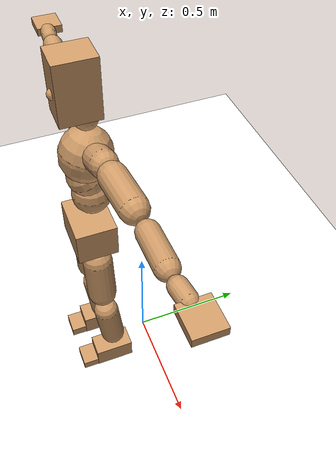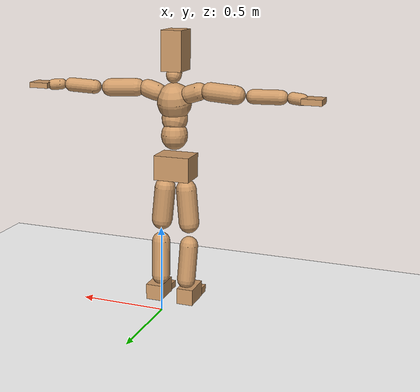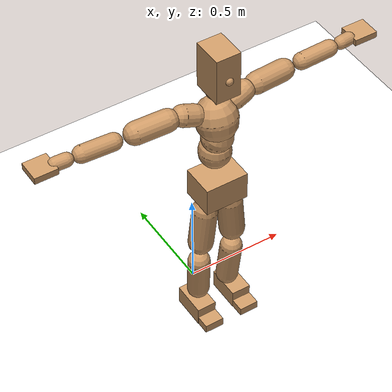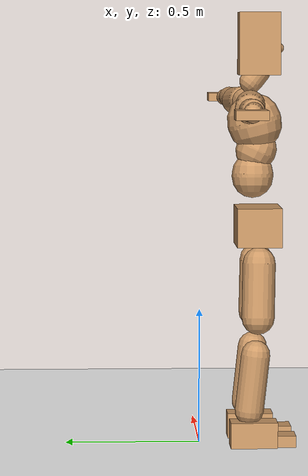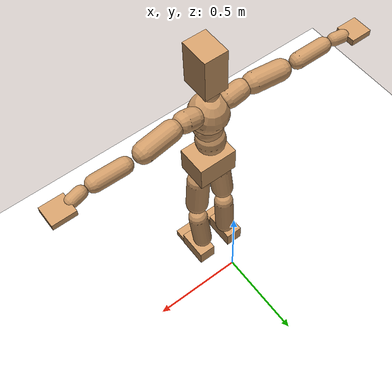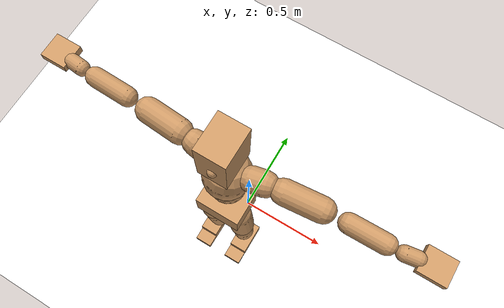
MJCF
<mujoco model="humanoid">
  <option integrator="implicitfast" />

  <visual>
    <global offwidth="1280" offheight="960" />
    <headlight active="1" ambient="0.34 0.34 0.34" diffuse="0.5 0.5 0.5" />
  </visual>

  <default>
    <joint damping="2" stiffness="2" armature="0.01" limited="true" solimplimit="0 .99 .01" />
    <geom condim="1" friction="0.7 0.005 0.0001" solimp=".99 .99 .003" solref="0.015 1" margin="0.001" rgba="0.8 0.6 .4 1" />
    <default class="smplcontact">
      <geom condim="3" friction="1. 0.005 0.0001" solref="0.015 1" solimp="0.98 0.98 0.001" priority="1" />
    </default>
    <default class="stiff_medium">
      <joint stiffness="10" />
    </default>
    <default class="stiff_medium_higher">
      <joint stiffness="50" />
    </default>
    <default class="stiff_high">
      <joint stiffness="100" />
    </default>
  </default>

  <asset>
    <texture type="skybox" builtin="gradient" rgb1="0.99 0.99 0.99" rgb2="0.608 0.828 0.892" width="100" />
    <texture builtin="flat" height="1278" mark="cross" markrgb="1 1 1" name="texgeom" random="0.01" rgb1="0.8 0.6 0.4" rgb2="0.8 0.6 0.4" type="cube" width="127" />
    <texture name="texplane" type="2d" builtin="checker" markrgb="1 1 1" rgb1="0.756 0.772 0.76" rgb2="0.6 0.6 0.6" width="100" height="100" />
    <material name="MatPlane" reflectance="0.5" texture="texplane" texrepeat="1 1" texuniform="true" />
    <material name="geom" texture="texgeom" texuniform="true" />
  </asset>

  <worldbody>
    <light name="tracking_light" pos="0 0 7" dir="0 0 -1" directional="true" cutoff="100" exponent="1" diffuse="1 1 1" specular="0.1 0.1 0.1" mode="trackcom" />
    <camera name="back" pos="0 3 2.4" xyaxes="-1 0 0 0 -1 2" mode="trackcom" />
    <camera name="side" pos="-3 0 2.4" xyaxes="0 -1 0 1 0 2" mode="trackcom" />
    <camera name="front_side" pos="-2.8 -2.8 0.8" xyaxes="0.5 -0.5 0 0.1 0.1 1" mode="trackcom" />
    <geom condim="3" name="floor" pos="0 0 0" rgba="1 1 1 1" size="100 100 .2" type="plane" material="MatPlane" />
    <body name="Pelvis" pos="-0.0018 -0.2233 0.825587" euler="90 0 0">
      <site name="Pelvis" size="0.01" />
      <freejoint name="Pelvis" />
      <geom type="box" pos="-0.0000 -0.0121 -0.0055" size="0.1069 0.0722 0.083" quat="1.0000 0.0000 0.0000 0.0000" density="3165.830099" name="Pelvis" />
      <body name="L_Hip" pos="0.0608125 -0.079975 -0.00595">
        <joint name="L_Hip_x" type="hinge" pos="0 0 0" axis="1 0 0" stiffness="8.020801931818184" range="-160.0 22.92" class="stiff_medium" damping="11.36194518075991" armature="0.007153277434128081"/>
        <joint name="L_Hip_y" type="hinge" pos="0 0 0" axis="0 1 0" stiffness="8.03917306818182" range="-70.0 70.0" class="stiff_medium" damping="8.207257723364137" armature="0.008378856726485995"/>
        <joint name="L_Hip_z" type="hinge" pos="0 0 0" axis="0 0 1" stiffness="8.035256477272728" range="-28.65 90.0" class="stiff_medium" damping="7.580471877673133" armature="0.007151427468522713"/>
        <geom type="capsule" density="2040.816327" fromto="0.0060375 -0.065625 -0.0007875 0.023975 -0.262675 -0.00315" size="0.0615" name="L_Hip" />
        <body name="L_Knee" pos="0.0300125 -0.3283 -0.0039375">
          <joint name="L_Knee_x" type="hinge" pos="0 0 0" axis="1 0 0" range="-5.16 171.89" damping="6.190431401781824" armature="0.007345812746914746" stiffness="1.6302417045454547"/>
          <joint name="L_Knee_y" type="hinge" pos="0 0 0" axis="0 1 0" range="-4.58 6.88" damping="6.659606448665802" armature="0.008600571968275744" stiffness="1.6114610681818182"/>
          <joint name="L_Knee_z" type="hinge" pos="0 0 0" axis="0 0 1" range="-6.88 4.58" damping="6.1901664993505685" armature="0.007336542514311972" stiffness="1.6321619318181817"/>
          <geom type="capsule" density="1234.567901" fromto="-0.0023625 -0.06965 -0.0076125 -0.0095375 -0.2786 -0.030625" size="0.0541" name="L_Knee" />
          <body name="L_Ankle" pos="-0.0119 -0.34825 -0.0382375">
            <joint name="L_Ankle_x" type="hinge" pos="0 0 0" axis="1 0 0" range="-45.84 45.84" class="stiff_medium" damping="5.161807927839426" armature="0.008458478225834447" stiffness="8.750017954545454"/>
            <joint name="L_Ankle_y" type="hinge" pos="0 0 0" axis="0 1 0" range="-74.48 22.92" class="stiff_medium" damping="2.5896376969776917" armature="0.008515827848834857" stiffness="8.750011704545456"/>
            <joint name="L_Ankle_z" type="hinge" pos="0 0 0" axis="0 0 1" range="-4.58 4.58" class="stiff_medium" damping="5.29220199562067" armature="0.00889123871823854" stiffness="8.75"/>
            <geom type="box" pos="0.0203875 -0.0209125 0.021175" size="0.0483 0.0464 0.085" quat="1.0000 0.0000 0.0000 0.0000" density="449.071558" name="L_Ankle" class="smplcontact" />
            <body name="L_Toe" pos="0.0231 -0.048825 0.104388">
              <joint name="L_Toe_x" type="hinge" pos="0 0 0" axis="1 0 0" range="-91.67 22.92" armature="0.009108934582590907" damping="1.785532722720818" stiffness="1.75"/>
              <joint name="L_Toe_y" type="hinge" pos="0 0 0" axis="0 1 0" range="-4.58 4.58" armature="0.009372172477213336" damping="1.811148908020726" stiffness="1.75"/>
              <joint name="L_Toe_z" type="hinge" pos="0 0 0" axis="0 0 1" range="-4.58 4.58" armature="0.009904425331423881" damping="1.8618670376797475" stiffness="1.75"/>
              <geom type="box" pos="-0.002625 0.0048125 0.0217" size="0.0478 0.02 0.0496" quat="1.0000 0.0000 0.0000 0.0000" density="423.206892" name="L_Toe" class="smplcontact" />
            </body>
          </body>
        </body>
      </body>
      <body name="R_Hip" pos="-0.0592375 -0.0791875 -0.0037625">
        <joint name="R_Hip_x" type="hinge" pos="0 0 0" axis="1 0 0" stiffness="8.020801931818184" range="-160.0 22.92" class="stiff_medium" damping="11.36194518075991" armature="0.007153277434128081"/>
        <joint name="R_Hip_y" type="hinge" pos="0 0 0" axis="0 1 0" stiffness="8.03917306818182" range="-70.0 70.0" class="stiff_medium" damping="8.207257723364137" armature="0.008378856726485995"/>
        <joint name="R_Hip_z" type="hinge" pos="0 0 0" axis="0 0 1" stiffness="8.035256477272728" range="-90.0 28.65" class="stiff_medium" damping="7.580471877673133" armature="0.007151427468522713"/>
        <geom type="capsule" density="2040.816327" fromto="-0.0067375 -0.0669375 -0.001575 -0.026775 -0.267838 -0.0062125" size="0.0606" name="R_Hip" />
        <body name="R_Knee" pos="-0.0335125 -0.334775 -0.0077875">
          <joint name="R_Knee_x" type="hinge" pos="0 0 0" axis="1 0 0" range="-5.16 171.89" damping="6.190431401781824" armature="0.007345812746914746" stiffness="1.6302417045454547"/>
          <joint name="R_Knee_y" type="hinge" pos="0 0 0" axis="0 1 0" range="-6.88 4.58" damping="6.659606448665802" armature="0.008600571968275744" stiffness="1.6114610681818182"/>
          <joint name="R_Knee_z" type="hinge" pos="0 0 0" axis="0 0 1" range="-4.58 6.88" damping="6.1901664993505685" armature="0.007336542514311972" stiffness="1.6321619318181817"/>
          <geom type="capsule" density="1234.567901" fromto="0.0028 -0.0697375 -0.0074375 0.011025 -0.278863 -0.029575" size="0.0541" name="R_Knee" />
          <body name="R_Ankle" pos="0.013825 -0.3486 -0.0370125">
            <joint name="R_Ankle_x" type="hinge" pos="0 0 0" axis="1 0 0" range="-45.84 45.84" class="stiff_medium" damping="5.161807927839426" armature="0.008458478225834447" stiffness="8.750017954545454"/>
            <joint name="R_Ankle_y" type="hinge" pos="0 0 0" axis="0 1 0" range="-22.92 74.48" class="stiff_medium" damping="2.5896376969776917" armature="0.008515827848834857" stiffness="8.750011704545456"/>
            <joint name="R_Ankle_z" type="hinge" pos="0 0 0" axis="0 0 1" range="-4.58 4.58" class="stiff_medium" damping="5.29220199562067" armature="0.00889123871823854" stiffness="8.75"/>
            <geom type="box" pos="-0.01855 -0.015225 0.0224" size="0.0483 0.0478 0.0865" quat="1.0000 0.0000 0.0000 0.0000" density="434.700981" name="R_Ankle" class="smplcontact" />
            <body name="R_Toe" pos="-0.022225 -0.0420875 0.107888">
              <joint name="R_Toe_x" type="hinge" pos="0 0 0" axis="1 0 0" range="-91.67 22.92" armature="0.009108934582590907" damping="1.785532722720818" stiffness="1.75"/>
              <joint name="R_Toe_y" type="hinge" pos="0 0 0" axis="0 1 0" range="-4.58 4.58" armature="0.009372172477213336" damping="1.811148908020726" stiffness="1.75"/>
              <joint name="R_Toe_z" type="hinge" pos="0 0 0" axis="0 0 1" range="-4.58 4.58" armature="0.009904425331423881" damping="1.8618670376797475" stiffness="1.75"/>
              <geom type="box" pos="0.003675 0.0039375 0.0198625" size="0.0479 0.0216 0.0493" quat="1.0000 0.0000 0.0000 0.0000" density="407.384095" name="R_Toe" class="smplcontact" />
            </body>
          </body>
        </body>
      </body>
      <body name="Torso" pos="-0.0025 0.109 -0.0267">
        <joint name="Torso_x" type="hinge" pos="0 0 0" axis="1 0 0" range="-25.78 57.3" class="stiff_medium" damping="14.999999999999998" armature="0.009999999999999998" stiffness="10.0"/>
        <joint name="Torso_y" type="hinge" pos="0 0 0" axis="0 1 0" range="-57.3 57.3" class="stiff_high" damping="20.0" armature="0.010000000000000002" stiffness="100.0"/>
        <joint name="Torso_z" type="hinge" pos="0 0 0" axis="0 0 1" range="-34.38 34.38" class="stiff_high" damping="19.999999999999996" armature="0.009999999999999997" stiffness="100.0"/>
        <geom type="capsule" density="2040.816327" fromto="0.0025 0.0608 0.0005 0.003 0.0743 0.0006" size="0.0769" name="Torso" />
        <body name="Spine" pos="0.0055 0.1352 0.0011">
          <joint name="Spine_x" type="hinge" pos="0 0 0" axis="1 0 0" stiffness="10.0" range="-25.78 57.3" class="stiff_medium" damping="15.000000000000007" armature="0.010000000000000009"/>
          <joint name="Spine_y" type="hinge" pos="0 0 0" axis="0 1 0" stiffness="10.0" range="-57.3 57.3" class="stiff_high" damping="8.0" armature="0.010000000000000002"/>
          <joint name="Spine_z" type="hinge" pos="0 0 0" axis="0 0 1" stiffness="20.0" range="-34.38 34.38" class="stiff_high" damping="12.0" armature="0.010000000000000002"/>
          <geom type="capsule" density="2040.816327" fromto="0.0007 0.0238 0.0114 0.0008 0.0291 0.014" size="0.0755" name="Spine" />
          <body name="Chest" pos="0.0015 0.0529 0.0254">
            <joint name="Chest_x" type="hinge" pos="0 0 0" axis="1 0 0" stiffness="10.0" range="-25.78 57.3" class="stiff_medium" damping="15.000000000000004" armature="0.010000000000000007"/>
            <joint name="Chest_y" type="hinge" pos="0 0 0" axis="0 1 0" stiffness="10.0" range="-57.3 57.3" class="stiff_high" damping="8.000000000000002" armature="0.010000000000000005"/>
            <joint name="Chest_z" type="hinge" pos="0 0 0" axis="0 0 1" stiffness="20.0" range="-34.38 34.38" class="stiff_high" damping="12.0" armature="0.010000000000000002"/>
            <geom type="capsule" density="2040.816327" fromto="-0.0009 0.0682 -0.0173 -0.001 0.0833 -0.0212" size="0.1002" name="Chest" />
            <body name="Neck" pos="-0.0028 0.2139 -0.0429">
              <joint name="Neck_x" type="hinge" pos="0 0 0" axis="1 0 0" range="-28.65 57.3" class="stiff_medium_higher" damping="10.0" armature="0.01" stiffness="50.0"/>
              <joint name="Neck_y" type="hinge" pos="0 0 0" axis="0 1 0" range="-40.11 40.11" class="stiff_medium_higher" damping="10.0" armature="0.010000000000000002" stiffness="50.0"/>
              <joint name="Neck_z" type="hinge" pos="0 0 0" axis="0 0 1" range="-40.11 40.11" class="stiff_medium_higher" damping="9.99999999999999" armature="0.00999999999999998" stiffness="50.0"/>
              <geom type="capsule" density="1000" fromto="0.001 0.013 0.0103 0.0041 0.052 0.0411" size="0.0436" name="Neck" />
              <body name="Head" pos="0.0052 0.065 0.0513">
                <joint name="Head_x" type="hinge" pos="0 0 0" axis="1 0 0" range="-28.65 57.3" class="stiff_medium_higher" damping="2.0000000000000018" armature="0.010000000000000018" stiffness="50.0"/>
                <joint name="Head_y" type="hinge" pos="0 0 0" axis="0 1 0" range="-40.11 40.11" class="stiff_medium_higher" damping="1.9999999999999998" armature="0.009999999999999998" stiffness="50.0"/>
                <joint name="Head_z" type="hinge" pos="0 0 0" axis="0 0 1" range="-40.11 40.11" class="stiff_medium_higher" damping="1.9999999999999987" armature="0.009999999999999988" stiffness="50.0"/>
                <geom type="box" pos="-0.0042 0.0876 -0.0116" size="0.0606 0.1154 0.076" quat="1.0000 0.0000 0.0000 0.0000" density="1018.069894" name="Head" />
                <geom type="capsule" name="nose" size="0.02 0.01" pos="0 0.07 0.05" quat="1 0 0 0" mass="0" contype="0" conaffinity="0" />
              </body>
            </body>
            <body name="L_Thorax" pos="0.0788 0.1217 -0.0341">
              <joint name="L_Thorax_x" type="hinge" pos="0 0 0" axis="1 0 0" range="-10.89 4.58" class="stiff_medium_higher" damping="19.99999999999994" armature="0.009999999999999941" stiffness="50.0"/>
              <joint name="L_Thorax_y" type="hinge" pos="0 0 0" axis="0 1 0" range="-28.65 17.19" class="stiff_medium_higher" damping="20.000000000000004" armature="0.010000000000000005" stiffness="50.0"/>
              <joint name="L_Thorax_z" type="hinge" pos="0 0 0" axis="0 0 1" range="-31.51 40.11" class="stiff_medium_higher" damping="20.0" armature="0.01" stiffness="50.0"/>
              <geom type="capsule" density="1000" fromto="0.0182 0.0061 -0.0018 0.0728 0.0244 -0.0071" size="0.0521" name="L_Thorax" />
              <body name="L_Shoulder" pos="0.091 0.0305 -0.0089">
                <joint name="L_Shoulder_x" type="hinge" pos="0 0 0" axis="1 0 0" range="-97.4 97.4" class="stiff_medium" damping="6.00000000000003" armature="0.010000000000000103" stiffness="10.0"/>
                <joint name="L_Shoulder_y" type="hinge" pos="0 0 0" axis="0 1 0" range="-108.86 80.21" class="stiff_medium" damping="6.0" armature="0.01" stiffness="10.0"/>
                <joint name="L_Shoulder_z" type="hinge" pos="0 0 0" axis="0 0 1" range="-97.4 85.94" class="stiff_medium" damping="6.000000000000003" armature="0.010000000000000009" stiffness="10.0"/>
                <geom type="capsule" density="1000" fromto="0.0519 -0.0026 -0.0055 0.2077 -0.0102 -0.022" size="0.0517" name="L_Shoulder" />
                <body name="L_Elbow" pos="0.2596 -0.0128 -0.0275">
                  <joint name="L_Elbow_x" type="hinge" pos="0 0 0" axis="1 0 0" range="-17.19 4.58" damping="5.00000000000001" armature="0.01000000000000004" stiffness="2.0"/>
                  <joint name="L_Elbow_y" type="hinge" pos="0 0 0" axis="0 1 0" range="-180.0 17.19" damping="5.000000000000005" armature="0.010000000000000023" stiffness="2.0"/>
                  <joint name="L_Elbow_z" type="hinge" pos="0 0 0" axis="0 0 1" range="-100.84 4.58" damping="5.000000000000002" armature="0.010000000000000009" stiffness="2.0"/>
                  <geom type="capsule" density="1000" fromto="0.0498 0.0018 -0.0002 0.1994 0.0072 -0.0009" size="0.0405" name="L_Elbow" />
                  <body name="L_Wrist" pos="0.2492 0.009 -0.0012">
                    <joint name="L_Wrist_x" type="hinge" pos="0 0 0" axis="1 0 0" range="-180.0 22.92" armature="0.009999999999999768" damping="1.9999999999999767" stiffness="2.0"/>
                    <joint name="L_Wrist_y" type="hinge" pos="0 0 0" axis="0 1 0" range="-17.19 17.19" armature="0.010000000000000061" damping="2.0000000000000058" stiffness="2.0"/>
                    <joint name="L_Wrist_z" type="hinge" pos="0 0 0" axis="0 0 1" range="-22.92 22.92" armature="0.009999999999999974" damping="1.9999999999999973" stiffness="2.0"/>
                    <geom type="capsule" density="1000" fromto="0.0168 -0.0016 -0.003 0.0672 -0.0065 -0.012" size="0.0318" name="L_Wrist" class="smplcontact" />
                    <body name="L_Hand" pos="0.084 -0.0082 -0.0149">
                      <joint name="L_Hand_x" type="hinge" pos="0 0 0" axis="1 0 0" range="-17.19 17.19" armature="0.009999999999999619" damping="1.9999999999999618" stiffness="2.0"/>
                      <joint name="L_Hand_y" type="hinge" pos="0 0 0" axis="0 1 0" range="-51.57 51.57" armature="0.010000000000000286" damping="2.0000000000000284" stiffness="2.0"/>
                      <joint name="L_Hand_z" type="hinge" pos="0 0 0" axis="0 0 1" range="-91.67 91.67" armature="0.010000000000000151" damping="2.000000000000015" stiffness="2.0"/>
                      <geom type="box" pos="0.0493 0.001 -0.0058" size="0.0585 0.0158 0.0538" quat="1.0000 0.0000 0.0000 0.0000" density="400.552564" name="L_Hand" class="smplcontact" />
                    </body>
                  </body>
                </body>
              </body>
            </body>
            <body name="R_Thorax" pos="-0.0818 0.1188 -0.0386">
              <joint name="R_Thorax_x" type="hinge" pos="0 0 0" axis="1 0 0" range="-10.89 4.58" class="stiff_medium_higher" damping="19.99999999999994" armature="0.009999999999999941" stiffness="50.0"/>
              <joint name="R_Thorax_y" type="hinge" pos="0 0 0" axis="0 1 0" range="-17.19 28.65" class="stiff_medium_higher" damping="20.000000000000004" armature="0.010000000000000005" stiffness="50.0"/>
              <joint name="R_Thorax_z" type="hinge" pos="0 0 0" axis="0 0 1" range="-40.11 31.51" class="stiff_medium_higher" damping="20.0" armature="0.01" stiffness="50.0"/>
              <geom type="capsule" density="1000" fromto="-0.0192 0.0065 -0.0018 -0.0768 0.026 -0.0073" size="0.0511" name="R_Thorax" />
              <body name="R_Shoulder" pos="-0.096 0.0326 -0.0091">
                <joint name="R_Shoulder_x" type="hinge" pos="0 0 0" axis="1 0 0" range="-97.4 97.4" class="stiff_medium" damping="6.00000000000003" armature="0.010000000000000103" stiffness="10.0"/>
                <joint name="R_Shoulder_y" type="hinge" pos="0 0 0" axis="0 1 0" range="-80.21 108.86" class="stiff_medium" damping="6.0" armature="0.01" stiffness="10.0"/>
                <joint name="R_Shoulder_z" type="hinge" pos="0 0 0" axis="0 0 1" range="-85.94 97.4" class="stiff_medium" damping="6.000000000000003" armature="0.010000000000000009" stiffness="10.0"/>
                <geom type="capsule" density="1000" fromto="-0.0507 -0.0027 -0.0043 -0.203 -0.0107 -0.0171" size="0.0531" name="R_Shoulder" />
                <body name="R_Elbow" pos="-0.2537 -0.0133 -0.0214">
                  <joint name="R_Elbow_x" type="hinge" pos="0 0 0" axis="1 0 0" range="-17.19 4.58" damping="5.00000000000001" armature="0.01000000000000004" stiffness="2.0"/>
                  <joint name="R_Elbow_y" type="hinge" pos="0 0 0" axis="0 1 0" range="-17.19 180.0" damping="5.000000000000005" armature="0.010000000000000023" stiffness="2.0"/>
                  <joint name="R_Elbow_z" type="hinge" pos="0 0 0" axis="0 0 1" range="-4.58 100.84" damping="5.000000000000002" armature="0.010000000000000009" stiffness="2.0"/>
                  <geom type="capsule" density="1000" fromto="-0.0511 0.0016 -0.0011 -0.2042 0.0062 -0.0044" size="0.0408" name="R_Elbow" />
                  <body name="R_Wrist" pos="-0.2553 0.0078 -0.0056">
                    <joint name="R_Wrist_x" type="hinge" pos="0 0 0" axis="1 0 0" range="-180.0 22.92" armature="0.009999999999999768" damping="1.9999999999999767" stiffness="2.0"/>
                    <joint name="R_Wrist_y" type="hinge" pos="0 0 0" axis="0 1 0" range="-17.19 17.19" armature="0.010000000000000061" damping="2.0000000000000058" stiffness="2.0"/>
                    <joint name="R_Wrist_z" type="hinge" pos="0 0 0" axis="0 0 1" range="-22.92 22.92" armature="0.009999999999999974" damping="1.9999999999999973" stiffness="2.0"/>
                    <geom type="capsule" density="1000" fromto="-0.0169 -0.0012 -0.0021 -0.0677 -0.0049 -0.0083" size="0.0326" name="R_Wrist" class="smplcontact" />
                    <body name="R_Hand" pos="-0.0846 -0.0061 -0.0103">
                      <joint name="R_Hand_x" type="hinge" pos="0 0 0" axis="1 0 0" range="-17.19 17.19" armature="0.009999999999999619" damping="1.9999999999999618" stiffness="2.0"/>
                      <joint name="R_Hand_y" type="hinge" pos="0 0 0" axis="0 1 0" range="-51.57 51.57" armature="0.010000000000000286" damping="2.0000000000000284" stiffness="2.0"/>
                      <joint name="R_Hand_z" type="hinge" pos="0 0 0" axis="0 0 1" range="-91.67 91.67" armature="0.010000000000000151" damping="2.000000000000015" stiffness="2.0"/>
                      <geom type="box" pos="-0.0462 -0.0009 -0.0079" size="0.0569 0.0164 0.0546" quat="1.0000 0.0000 0.0000 0.0000" density="403.679611" name="R_Hand" class="smplcontact" />
                    </body>
                  </body>
                </body>
              </body>
            </body>
          </body>
        </body>
      </body>
    </body>
  </worldbody>
  <actuator>
    <general name="L_Hip_x" joint="L_Hip_x" biastype="affine" gainprm="230.46175331812466" biasprm="-172.70772548025656 -144.3744347727273 -1.5149260241013214" ctrllimited="true" ctrlrange="-1 1" forcerange="-288.7488695454546 288.7488695454546" />
    <general name="L_Hip_y" joint="L_Hip_y" biastype="affine" gainprm="176.79064936355843" biasprm="0.0 -144.70511522727273 -1.6414515446728275" ctrllimited="true" ctrlrange="-1 1" forcerange="-289.41023045454546 289.41023045454546" />
    <general name="L_Hip_z" joint="L_Hip_z" biastype="affine" gainprm="149.7570798787459" biasprm="77.43444458964231 -144.6346165909091 -1.5160943755346266" ctrllimited="true" ctrlrange="-1 1" forcerange="-289.2692331818182 289.2692331818182" />
    <general name="L_Knee_x" joint="L_Knee_x" biastype="affine" gainprm="226.69284423600706" biasprm="213.4792314005617 -146.72175340909092 -1.547607850445456" ctrllimited="true" ctrlrange="-1 1" forcerange="-293.44350681818185 293.44350681818185" />
    <general name="L_Knee_y" joint="L_Knee_y" biastype="affine" gainprm="14.504217935836177" biasprm="2.9109686956739274 -145.03149613636364 -1.6649016121664506" ctrllimited="true" ctrlrange="-1 1" forcerange="-290.0629922727273 290.0629922727273" />
    <general name="L_Knee_z" joint="L_Knee_z" biastype="affine" gainprm="14.690539432253468" biasprm="-2.9483630623196317 -146.89457386363637 -1.5475416248376421" ctrllimited="true" ctrlrange="-1 1" forcerange="-293.78914772727273 293.78914772727273" />
    <general name="L_Ankle_x" joint="L_Ankle_x" biastype="affine" gainprm="63.00476994999299" biasprm="0.0 -78.75016159090909 -1.720602642613142" ctrllimited="true" ctrlrange="-1 1" forcerange="-157.50032318181817 157.50032318181817" />
    <general name="L_Ankle_y" joint="L_Ankle_y" biastype="affine" gainprm="66.93564801272316" biasprm="-35.43328553938405 -78.7501053409091 -1.726425131318461" ctrllimited="true" ctrlrange="-1 1" forcerange="-157.5002106818182 157.5002106818182" />
    <general name="L_Ankle_z" joint="L_Ankle_z" biastype="affine" gainprm="6.294966279630548" biasprm="0.0 -78.75 -1.7640673318735567" ctrllimited="true" ctrlrange="-1 1" forcerange="-157.5 157.5" />
    <general name="L_Toe_x" joint="L_Toe_x" biastype="affine" gainprm="62.999142880599514" biasprm="-37.797286613502195 -63.0 -0.7142130890883273" ctrllimited="true" ctrlrange="-1 1" forcerange="-126.0 126.0" />
    <general name="L_Toe_y" joint="L_Toe_y" biastype="affine" gainprm="5.035973023704439" biasprm="0.0 -63.0 -0.7244595632082904" ctrllimited="true" ctrlrange="-1 1" forcerange="-126.0 126.0" />
    <general name="L_Toe_z" joint="L_Toe_z" biastype="affine" gainprm="5.035973023704439" biasprm="0.0 -63.0 -0.744746815071899" ctrllimited="true" ctrlrange="-1 1" forcerange="-126.0 126.0" />
    <general name="R_Hip_x" joint="R_Hip_x" biastype="affine" gainprm="230.46175331812466" biasprm="-172.70772548025656 -144.3744347727273 -1.5149260241013214" ctrllimited="true" ctrlrange="-1 1" forcerange="-288.7488695454546 288.7488695454546" />
    <general name="R_Hip_y" joint="R_Hip_y" biastype="affine" gainprm="176.79064936355843" biasprm="0.0 -144.70511522727273 -1.6414515446728275" ctrllimited="true" ctrlrange="-1 1" forcerange="-289.41023045454546 289.41023045454546" />
    <general name="R_Hip_z" joint="R_Hip_z" biastype="affine" gainprm="149.7570798787459" biasprm="-77.43444458964231 -144.6346165909091 -1.5160943755346266" ctrllimited="true" ctrlrange="-1 1" forcerange="-289.2692331818182 289.2692331818182" />
    <general name="R_Knee_x" joint="R_Knee_x" biastype="affine" gainprm="226.69284423600706" biasprm="213.4792314005617 -146.72175340909092 -1.547607850445456" ctrllimited="true" ctrlrange="-1 1" forcerange="-293.44350681818185 293.44350681818185" />
    <general name="R_Knee_y" joint="R_Knee_y" biastype="affine" gainprm="14.504217935836177" biasprm="-2.9109686956739274 -145.03149613636364 -1.6649016121664506" ctrllimited="true" ctrlrange="-1 1" forcerange="-290.0629922727273 290.0629922727273" />
    <general name="R_Knee_z" joint="R_Knee_z" biastype="affine" gainprm="14.690539432253468" biasprm="2.9483630623196317 -146.89457386363637 -1.5475416248376421" ctrllimited="true" ctrlrange="-1 1" forcerange="-293.78914772727273 293.78914772727273" />
    <general name="R_Ankle_x" joint="R_Ankle_x" biastype="affine" gainprm="63.00476994999299" biasprm="0.0 -78.75016159090909 -1.720602642613142" ctrllimited="true" ctrlrange="-1 1" forcerange="-157.50032318181817 157.50032318181817" />
    <general name="R_Ankle_y" joint="R_Ankle_y" biastype="affine" gainprm="66.93564801272316" biasprm="35.43328553938405 -78.7501053409091 -1.726425131318461" ctrllimited="true" ctrlrange="-1 1" forcerange="-157.5002106818182 157.5002106818182" />
    <general name="R_Ankle_z" joint="R_Ankle_z" biastype="affine" gainprm="6.294966279630548" biasprm="0.0 -78.75 -1.7640673318735567" ctrllimited="true" ctrlrange="-1 1" forcerange="-157.5 157.5" />
    <general name="R_Toe_x" joint="R_Toe_x" biastype="affine" gainprm="62.999142880599514" biasprm="-37.797286613502195 -63.0 -0.7142130890883273" ctrllimited="true" ctrlrange="-1 1" forcerange="-126.0 126.0" />
    <general name="R_Toe_y" joint="R_Toe_y" biastype="affine" gainprm="5.035973023704439" biasprm="0.0 -63.0 -0.7244595632082904" ctrllimited="true" ctrlrange="-1 1" forcerange="-126.0 126.0" />
    <general name="R_Toe_z" joint="R_Toe_z" biastype="affine" gainprm="5.035973023704439" biasprm="0.0 -63.0 -0.744746815071899" ctrllimited="true" ctrlrange="-1 1" forcerange="-126.0 126.0" />
    <general name="Torso_x" joint="Torso_x" biastype="affine" gainprm="174.00234510682668" biasprm="66.0153336274335 -240.0 -3.9999999999999996" ctrllimited="true" ctrlrange="-1 1" forcerange="-360.0 360.0" />
    <general name="Torso_y" joint="Torso_y" biastype="affine" gainprm="240.0176787342602" biasprm="0.0 -240.0 -4.0" ctrllimited="true" ctrlrange="-1 1" forcerange="-360.0 360.0" />
    <general name="Torso_z" joint="Torso_z" biastype="affine" gainprm="144.01060724055614" biasprm="0.0 -240.0 -3.999999999999999" ctrllimited="true" ctrlrange="-1 1" forcerange="-360.0 360.0" />
    <general name="Spine_x" joint="Spine_x" biastype="affine" gainprm="174.00234510682668" biasprm="66.0153336274335 -240.0 -4.000000000000002" ctrllimited="true" ctrlrange="-1 1" forcerange="-360.0 360.0" />
    <general name="Spine_y" joint="Spine_y" biastype="affine" gainprm="240.0176787342602" biasprm="0.0 -240.0 -4.0" ctrllimited="true" ctrlrange="-1 1" forcerange="-360.0 360.0" />
    <general name="Spine_z" joint="Spine_z" biastype="affine" gainprm="144.01060724055614" biasprm="0.0 -240.0 -4.0" ctrllimited="true" ctrlrange="-1 1" forcerange="-360.0 360.0" />
    <general name="Chest_x" joint="Chest_x" biastype="affine" gainprm="174.00234510682668" biasprm="66.0153336274335 -240.0 -4.000000000000001" ctrllimited="true" ctrlrange="-1 1" forcerange="-360.0 360.0" />
    <general name="Chest_y" joint="Chest_y" biastype="affine" gainprm="240.0176787342602" biasprm="0.0 -240.0 -4.000000000000001" ctrllimited="true" ctrlrange="-1 1" forcerange="-360.0 360.0" />
    <general name="Chest_z" joint="Chest_z" biastype="affine" gainprm="144.01060724055614" biasprm="0.0 -240.0 -4.0" ctrllimited="true" ctrlrange="-1 1" forcerange="-360.0 360.0" />
    <general name="Neck_x" joint="Neck_x" biastype="affine" gainprm="27.00198885760427" biasprm="9.000662952534757 -36.0 -0.8" ctrllimited="true" ctrlrange="-1 1" forcerange="-72.0 72.0" />
    <general name="Neck_y" joint="Neck_y" biastype="affine" gainprm="25.20185626709732" biasprm="0.0 -36.0 -0.8" ctrllimited="true" ctrlrange="-1 1" forcerange="-72.0 72.0" />
    <general name="Neck_z" joint="Neck_z" biastype="affine" gainprm="25.20185626709732" biasprm="0.0 -36.0 -0.7999999999999993" ctrllimited="true" ctrlrange="-1 1" forcerange="-72.0 72.0" />
    <general name="Head_x" joint="Head_x" biastype="affine" gainprm="18.001325905069514" biasprm="6.000441968356505 -24.0 -0.8000000000000007" ctrllimited="true" ctrlrange="-1 1" forcerange="-48.0 48.0" />
    <general name="Head_y" joint="Head_y" biastype="affine" gainprm="16.801237511398213" biasprm="0.0 -24.0 -0.7999999999999999" ctrllimited="true" ctrlrange="-1 1" forcerange="-48.0 48.0" />
    <general name="Head_z" joint="Head_z" biastype="affine" gainprm="16.801237511398213" biasprm="0.0 -24.0 -0.7999999999999995" ctrllimited="true" ctrlrange="-1 1" forcerange="-48.0 48.0" />
    <general name="L_Thorax_x" joint="L_Thorax_x" biastype="affine" gainprm="16.200146117011364" biasprm="-6.6078165480505335 -120.0 -1.5999999999999952" ctrllimited="true" ctrlrange="-1 1" forcerange="-240.0 240.0" />
    <general name="L_Thorax_y" joint="L_Thorax_y" biastype="affine" gainprm="48.00353574685204" biasprm="-12.00088393671301 -120.0 -1.6000000000000005" ctrllimited="true" ctrlrange="-1 1" forcerange="-240.0 240.0" />
    <general name="L_Thorax_z" joint="L_Thorax_z" biastype="affine" gainprm="75.00028861670033" biasprm="9.00589894029074 -120.0 -1.6" ctrllimited="true" ctrlrange="-1 1" forcerange="-240.0 240.0" />
    <general name="L_Shoulder_x" joint="L_Shoulder_x" biastype="affine" gainprm="81.5976331892389" biasprm="0.0 -48.0 -1.6000000000000083" ctrllimited="true" ctrlrange="-1 1" forcerange="-96.0 96.0" />
    <general name="L_Shoulder_y" joint="L_Shoulder_y" biastype="affine" gainprm="79.19745640189629" biasprm="-12.00088393671301 -48.0 -1.6" ctrllimited="true" ctrlrange="-1 1" forcerange="-96.0 96.0" />
    <general name="L_Shoulder_z" joint="L_Shoulder_z" biastype="affine" gainprm="76.79727961455369" biasprm="-4.800353574685214 -48.0 -1.6000000000000008" ctrllimited="true" ctrlrange="-1 1" forcerange="-96.0 96.0" />
    <general name="L_Elbow_x" joint="L_Elbow_x" biastype="affine" gainprm="13.67849441372996" biasprm="-7.923096672353461 -72.0 -0.8000000000000016" ctrllimited="true" ctrlrange="-1 1" forcerange="-144.0 144.0" />
    <general name="L_Elbow_y" joint="L_Elbow_y" biastype="affine" gainprm="123.89813107227425" biasprm="-102.29653998619085 -72.0 -0.8000000000000009" ctrllimited="true" ctrlrange="-1 1" forcerange="-144.0 144.0" />
    <general name="L_Elbow_z" joint="L_Elbow_z" biastype="affine" gainprm="66.23733950828719" biasprm="-60.4819417669107 -72.0 -0.8000000000000004" ctrllimited="true" ctrlrange="-1 1" forcerange="-144.0 144.0" />
    <general name="L_Wrist_x" joint="L_Wrist_x" biastype="affine" gainprm="21.24973270888136" biasprm="-16.449379134196157 -12.0 -0.7999999999999907" ctrllimited="true" ctrlrange="-1 1" forcerange="-24.0 24.0" />
    <general name="L_Wrist_y" joint="L_Wrist_y" biastype="affine" gainprm="3.6002651810139037" biasprm="0.0 -12.0 -0.8000000000000024" ctrllimited="true" ctrlrange="-1 1" forcerange="-24.0 24.0" />
    <general name="L_Wrist_z" joint="L_Wrist_z" biastype="affine" gainprm="4.800353574685205" biasprm="0.0 -12.0 -0.7999999999999989" ctrllimited="true" ctrlrange="-1 1" forcerange="-24.0 24.0" />
    <general name="L_Hand_x" joint="L_Hand_x" biastype="affine" gainprm="3.6002651810139037" biasprm="0.0 -12.0 -0.7999999999999847" ctrllimited="true" ctrlrange="-1 1" forcerange="-24.0 24.0" />
    <general name="L_Hand_y" joint="L_Hand_y" biastype="affine" gainprm="10.800795543041708" biasprm="0.0 -12.0 -0.8000000000000114" ctrllimited="true" ctrlrange="-1 1" forcerange="-24.0 24.0" />
    <general name="L_Hand_z" joint="L_Hand_z" biastype="affine" gainprm="19.199319903638422" biasprm="0.0 -12.0 -0.800000000000006" ctrllimited="true" ctrlrange="-1 1" forcerange="-24.0 24.0" />
    <general name="R_Thorax_x" joint="R_Thorax_x" biastype="affine" gainprm="16.200146117011364" biasprm="-6.6078165480505335 -120.0 -1.5999999999999952" ctrllimited="true" ctrlrange="-1 1" forcerange="-240.0 240.0" />
    <general name="R_Thorax_y" joint="R_Thorax_y" biastype="affine" gainprm="48.00353574685204" biasprm="12.000883936713002 -120.0 -1.6000000000000005" ctrllimited="true" ctrlrange="-1 1" forcerange="-240.0 240.0" />
    <general name="R_Thorax_z" joint="R_Thorax_z" biastype="affine" gainprm="75.00028861670033" biasprm="-9.00589894029074 -120.0 -1.6" ctrllimited="true" ctrlrange="-1 1" forcerange="-240.0 240.0" />
    <general name="R_Shoulder_x" joint="R_Shoulder_x" biastype="affine" gainprm="81.5976331892389" biasprm="0.0 -48.0 -1.6000000000000083" ctrllimited="true" ctrlrange="-1 1" forcerange="-96.0 96.0" />
    <general name="R_Shoulder_y" joint="R_Shoulder_y" biastype="affine" gainprm="79.19745640189629" biasprm="12.00088393671301 -48.0 -1.6" ctrllimited="true" ctrlrange="-1 1" forcerange="-96.0 96.0" />
    <general name="R_Shoulder_z" joint="R_Shoulder_z" biastype="affine" gainprm="76.79727961455369" biasprm="4.800353574685204 -48.0 -1.6000000000000008" ctrllimited="true" ctrlrange="-1 1" forcerange="-96.0 96.0" />
    <general name="R_Elbow_x" joint="R_Elbow_x" biastype="affine" gainprm="13.67849441372996" biasprm="-7.923096672353461 -72.0 -0.8000000000000016" ctrllimited="true" ctrlrange="-1 1" forcerange="-144.0 144.0" />
    <general name="R_Elbow_y" joint="R_Elbow_y" biastype="affine" gainprm="123.89813107227425" biasprm="102.29653998619085 -72.0 -0.8000000000000009" ctrllimited="true" ctrlrange="-1 1" forcerange="-144.0 144.0" />
    <general name="R_Elbow_z" joint="R_Elbow_z" biastype="affine" gainprm="66.23733950828719" biasprm="60.481941766910694 -72.0 -0.8000000000000004" ctrllimited="true" ctrlrange="-1 1" forcerange="-144.0 144.0" />
    <general name="R_Wrist_x" joint="R_Wrist_x" biastype="affine" gainprm="21.24973270888136" biasprm="-16.449379134196157 -12.0 -0.7999999999999907" ctrllimited="true" ctrlrange="-1 1" forcerange="-24.0 24.0" />
    <general name="R_Wrist_y" joint="R_Wrist_y" biastype="affine" gainprm="3.6002651810139037" biasprm="0.0 -12.0 -0.8000000000000024" ctrllimited="true" ctrlrange="-1 1" forcerange="-24.0 24.0" />
    <general name="R_Wrist_z" joint="R_Wrist_z" biastype="affine" gainprm="4.800353574685205" biasprm="0.0 -12.0 -0.7999999999999989" ctrllimited="true" ctrlrange="-1 1" forcerange="-24.0 24.0" />
    <general name="R_Hand_x" joint="R_Hand_x" biastype="affine" gainprm="3.6002651810139037" biasprm="0.0 -12.0 -0.7999999999999847" ctrllimited="true" ctrlrange="-1 1" forcerange="-24.0 24.0" />
    <general name="R_Hand_y" joint="R_Hand_y" biastype="affine" gainprm="10.800795543041708" biasprm="0.0 -12.0 -0.8000000000000114" ctrllimited="true" ctrlrange="-1 1" forcerange="-24.0 24.0" />
    <general name="R_Hand_z" joint="R_Hand_z" biastype="affine" gainprm="19.199319903638422" biasprm="0.0 -12.0 -0.800000000000006" ctrllimited="true" ctrlrange="-1 1" forcerange="-24.0 24.0" />
  </actuator>
  <contact>
    <exclude body1="Torso" body2="Chest" />
    <exclude body1="Head" body2="Chest" />
    <exclude body1="R_Knee" body2="R_Toe" />
    <exclude body1="R_Knee" body2="L_Ankle" />
    <exclude body1="R_Knee" body2="L_Toe" />
    <exclude body1="L_Knee" body2="L_Toe" />
    <exclude body1="L_Knee" body2="R_Ankle" />
    <exclude body1="L_Knee" body2="R_Toe" />
    <exclude body1="L_Shoulder" body2="Chest" />
    <exclude body1="R_Shoulder" body2="Chest" />
  </contact>
  <sensor>
    <framelinvel name="sensor_Pelvis_framelinvel" objtype="xbody" objname="Pelvis" />
    <framelinvel name="sensor_L_Hip_framelinvel" objtype="xbody" objname="L_Hip" />
    <framelinvel name="sensor_L_Knee_framelinvel" objtype="xbody" objname="L_Knee" />
    <framelinvel name="sensor_L_Ankle_framelinvel" objtype="xbody" objname="L_Ankle" />
    <framelinvel name="sensor_L_Toe_framelinvel" objtype="xbody" objname="L_Toe" />
    <framelinvel name="sensor_R_Hip_framelinvel" objtype="xbody" objname="R_Hip" />
    <framelinvel name="sensor_R_Knee_framelinvel" objtype="xbody" objname="R_Knee" />
    <framelinvel name="sensor_R_Ankle_framelinvel" objtype="xbody" objname="R_Ankle" />
    <framelinvel name="sensor_R_Toe_framelinvel" objtype="xbody" objname="R_Toe" />
    <framelinvel name="sensor_Torso_framelinvel" objtype="xbody" objname="Torso" />
    <framelinvel name="sensor_Spine_framelinvel" objtype="xbody" objname="Spine" />
    <framelinvel name="sensor_Chest_framelinvel" objtype="xbody" objname="Chest" />
    <framelinvel name="sensor_Neck_framelinvel" objtype="xbody" objname="Neck" />
    <framelinvel name="sensor_Head_framelinvel" objtype="xbody" objname="Head" />
    <framelinvel name="sensor_L_Thorax_framelinvel" objtype="xbody" objname="L_Thorax" />
    <framelinvel name="sensor_L_Shoulder_framelinvel" objtype="xbody" objname="L_Shoulder" />
    <framelinvel name="sensor_L_Elbow_framelinvel" objtype="xbody" objname="L_Elbow" />
    <framelinvel name="sensor_L_Wrist_framelinvel" objtype="xbody" objname="L_Wrist" />
    <framelinvel name="sensor_L_Hand_framelinvel" objtype="xbody" objname="L_Hand" />
    <framelinvel name="sensor_R_Thorax_framelinvel" objtype="xbody" objname="R_Thorax" />
    <framelinvel name="sensor_R_Shoulder_framelinvel" objtype="xbody" objname="R_Shoulder" />
    <framelinvel name="sensor_R_Elbow_framelinvel" objtype="xbody" objname="R_Elbow" />
    <framelinvel name="sensor_R_Wrist_framelinvel" objtype="xbody" objname="R_Wrist" />
    <framelinvel name="sensor_R_Hand_framelinvel" objtype="xbody" objname="R_Hand" />
    <frameangvel name="sensor_Pelvis_frameangvel" objtype="xbody" objname="Pelvis" />
    <frameangvel name="sensor_L_Hip_frameangvel" objtype="xbody" objname="L_Hip" />
    <frameangvel name="sensor_L_Knee_frameangvel" objtype="xbody" objname="L_Knee" />
    <frameangvel name="sensor_L_Ankle_frameangvel" objtype="xbody" objname="L_Ankle" />
    <frameangvel name="sensor_L_Toe_frameangvel" objtype="xbody" objname="L_Toe" />
    <frameangvel name="sensor_R_Hip_frameangvel" objtype="xbody" objname="R_Hip" />
    <frameangvel name="sensor_R_Knee_frameangvel" objtype="xbody" objname="R_Knee" />
    <frameangvel name="sensor_R_Ankle_frameangvel" objtype="xbody" objname="R_Ankle" />
    <frameangvel name="sensor_R_Toe_frameangvel" objtype="xbody" objname="R_Toe" />
    <frameangvel name="sensor_Torso_frameangvel" objtype="xbody" objname="Torso" />
    <frameangvel name="sensor_Spine_frameangvel" objtype="xbody" objname="Spine" />
    <frameangvel name="sensor_Chest_frameangvel" objtype="xbody" objname="Chest" />
    <frameangvel name="sensor_Neck_frameangvel" objtype="xbody" objname="Neck" />
    <frameangvel name="sensor_Head_frameangvel" objtype="xbody" objname="Head" />
    <frameangvel name="sensor_L_Thorax_frameangvel" objtype="xbody" objname="L_Thorax" />
    <frameangvel name="sensor_L_Shoulder_frameangvel" objtype="xbody" objname="L_Shoulder" />
    <frameangvel name="sensor_L_Elbow_frameangvel" objtype="xbody" objname="L_Elbow" />
    <frameangvel name="sensor_L_Wrist_frameangvel" objtype="xbody" objname="L_Wrist" />
    <frameangvel name="sensor_L_Hand_frameangvel" objtype="xbody" objname="L_Hand" />
    <frameangvel name="sensor_R_Thorax_frameangvel" objtype="xbody" objname="R_Thorax" />
    <frameangvel name="sensor_R_Shoulder_frameangvel" objtype="xbody" objname="R_Shoulder" />
    <frameangvel name="sensor_R_Elbow_frameangvel" objtype="xbody" objname="R_Elbow" />
    <frameangvel name="sensor_R_Wrist_frameangvel" objtype="xbody" objname="R_Wrist" />
    <frameangvel name="sensor_R_Hand_frameangvel" objtype="xbody" objname="R_Hand" />
    <subtreelinvel name="Chest_subtreelinvel" body="Chest" />
    <gyro name="Pelvis_gyro" site="Pelvis" />
  </sensor>
</mujoco>
